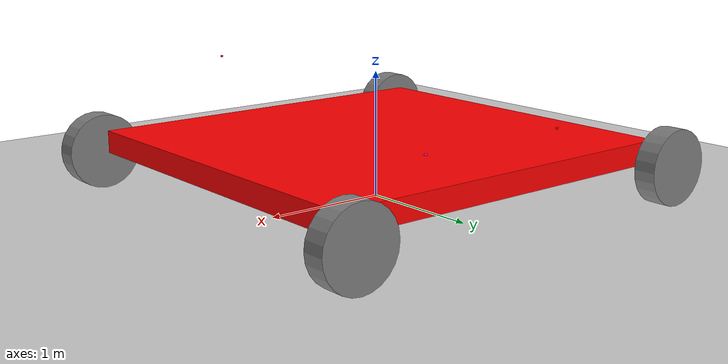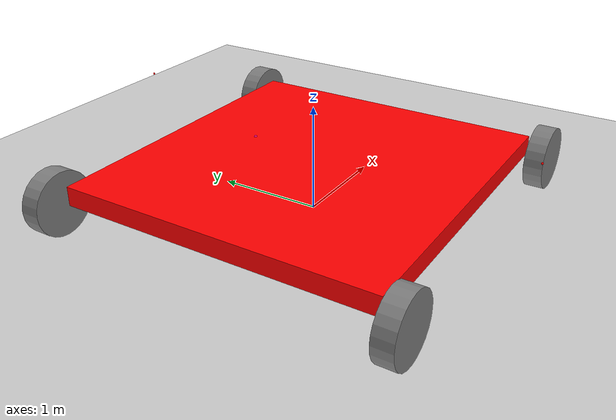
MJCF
<mujoco model="car">
  <compiler inertiafromgeom="true"/>
  <option timestep="0.002" gravity="0 0 -9.81"/>

  <asset>
    <texture name="grid" type="2d" builtin="checker"
             rgb1="0.2 0.3 0.4" rgb2="0.8 0.8 0.8"
             width="512" height="512"/>
    <material name="grid_mat" texture="grid" texrepeat="5 5"
              specular="0.3" shininess="0.3"/>
    <texture name="wheel_pattern" type="2d" builtin="checker"
             rgb1="1 1 1" rgb2="0 0 0"
             width="64" height="64"/>
    <material name="wheel_mat" texture="wheel_pattern" texrepeat="8 1"
              specular="0.5" shininess="0.5"/>
  </asset>

  <worldbody>
    <geom name="floor" type="plane" size="150 150 0.3"
          rgba="0.8 0.8 0.8 1" material="grid_mat"
          friction="1.0 0.01 0.001"/>

    <body name="chassis" pos="0 0 0.4">
      <inertial pos="0.15 0 0" mass="1500" diaginertia="460 2160 1000"/>
      <joint name="x_slide" type="slide" axis="1 0 0" damping="0.1"/>
      <joint name="z_slide" type="slide" axis="0 0 1" damping="0.1"/>
      <joint name="roll" type="hinge" axis="1 0 0" damping="0.1"/>
      <joint name="pitch" type="hinge" axis="0 1 0" damping="0.1"/>

      <geom name="chassis_geom" type="box" size="1.55 1.5 0.09"
            rgba="1 0 0 1"/>

      <site name="driver_seat" pos="0.15 0.75 0.09" size="0.015"
            rgba="1 0 1 0.5"/>

      <site name="lidar_left" pos="0.15 2 0.5" size="0.01"
            rgba="1 0 0 1"/>
      <site name="lidar_right" pos="0.15 -2 0.5" size="0.01"
            rgba="1 0 0 1"/>

      <!-- Front Left Suspension & Wheel -->
      <body name="fl_susp" pos="1.55 1.65 0.0">
        <inertial pos="0 0 0" mass="25" diaginertia="0.001 0.001 0.001"/>
        <joint name="fl_suspension" type="slide" axis="0 0 1" damping="1000" range="-0.1 0.1"/>
        <body name="front_left_wheel" pos="0 0 -0.09">
          <joint name="fl_wheel" type="hinge" axis="0 1 0" damping="0.01"/>
          <geom name="fl_geom" type="cylinder" size="0.3 0.09"
                euler="90 0 0" material="wheel_mat" mass="35"
                friction="1.0 0.01 0.001"/>
        </body>
      </body>

      <!-- Front Right Suspension & Wheel -->
      <body name="fr_susp" pos="1.55 -1.65 0.0">
        <inertial pos="0 0 0" mass="25" diaginertia="0.001 0.001 0.001"/>
        <joint name="fr_suspension" type="slide" axis="0 0 1" damping="1000" range="-0.1 0.1"/>
        <body name="front_right_wheel" pos="0 0 -0.09">
          <joint name="fr_wheel" type="hinge" axis="0 1 0" damping="0.01"/>
          <geom name="fr_geom" type="cylinder" size="0.3 0.09"
                euler="90 0 0" material="wheel_mat" mass="35"
                friction="1.0 0.01 0.001"/>
        </body>
      </body>

      <!-- Rear Left Suspension & Wheel -->
      <body name="rl_susp" pos="-1.55 1.65 0.0">
        <inertial pos="0 0 0" mass="25" diaginertia="0.001 0.001 0.001"/>
        <joint name="rl_suspension" type="slide" axis="0 0 1" damping="1000" range="-0.1 0.1"/>
        <body name="rear_left_wheel" pos="0 0 -0.09">
          <joint name="rl_wheel" type="hinge" axis="0 1 0" damping="0.01"/>
          <geom name="rl_geom" type="cylinder" size="0.3 0.09"
                euler="90 0 0" material="wheel_mat" mass="35"
                friction="1.0 0.01 0.001"/>
        </body>
      </body>

      <!-- Rear Right Suspension & Wheel -->
      <body name="rr_susp" pos="-1.55 -1.65 0.0">
        <inertial pos="0 0 0" mass="25" diaginertia="0.001 0.001 0.001"/>
        <joint name="rr_suspension" type="slide" axis="0 0 1" damping="1000" range="-0.1 0.1"/>
        <body name="rear_right_wheel" pos="0 0 -0.09">
          <joint name="rr_wheel" type="hinge" axis="0 1 0" damping="0.01"/>
          <geom name="rr_geom" type="cylinder" size="0.3 0.09"
                euler="90 0 0" material="wheel_mat" mass="35"
                friction="1.0 0.01 0.001"/>
        </body>
      </body>

    </body>
  </worldbody>

  <sensor>
    <accelerometer name="accel_z" site="driver_seat"/>
    <gyro name="gyro_pitch" site="driver_seat"/>
    <framepos name="lidar_left_pos" objtype="site" objname="lidar_left"/>
    <framepos name="lidar_right_pos" objtype="site" objname="lidar_right"/>
  </sensor>

  <actuator>
    <motor name="fl_motor" joint="fl_wheel" ctrlrange="-10 10" gear="1.0"/>
    <motor name="fr_motor" joint="fr_wheel" ctrlrange="-10 10" gear="1.0"/>
    <motor name="rl_motor" joint="rl_wheel" ctrlrange="-10 10" gear="1.0"/>
    <motor name="rr_motor" joint="rr_wheel" ctrlrange="-10 10" gear="1.0"/>

    <motor name="fl_act" joint="fl_suspension" gear="1.0" ctrlrange="-12000 12000"/>
    <motor name="fr_act" joint="fr_suspension" gear="1.0" ctrlrange="-12000 12000"/>
    <motor name="rl_act" joint="rl_suspension" gear="1.0" ctrlrange="-12000 12000"/>
    <motor name="rr_act" joint="rr_suspension" gear="1.0" ctrlrange="-12000 12000"/>
  </actuator>
</mujoco>
